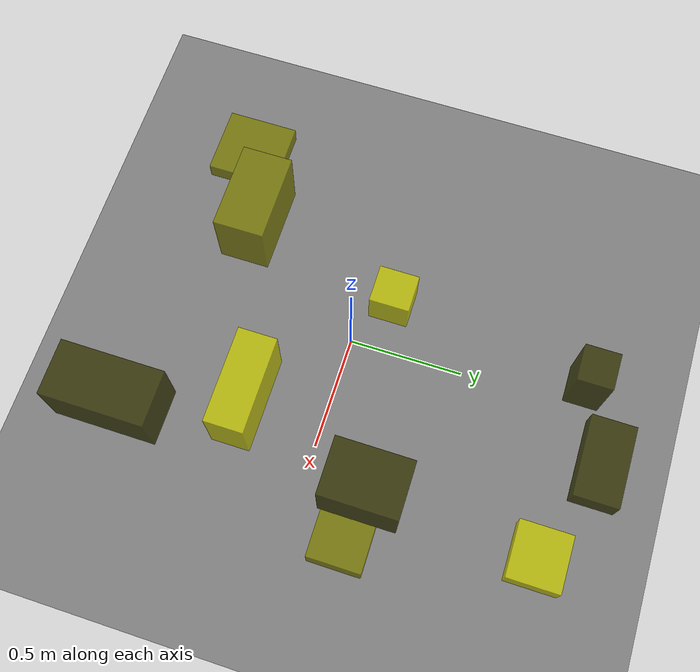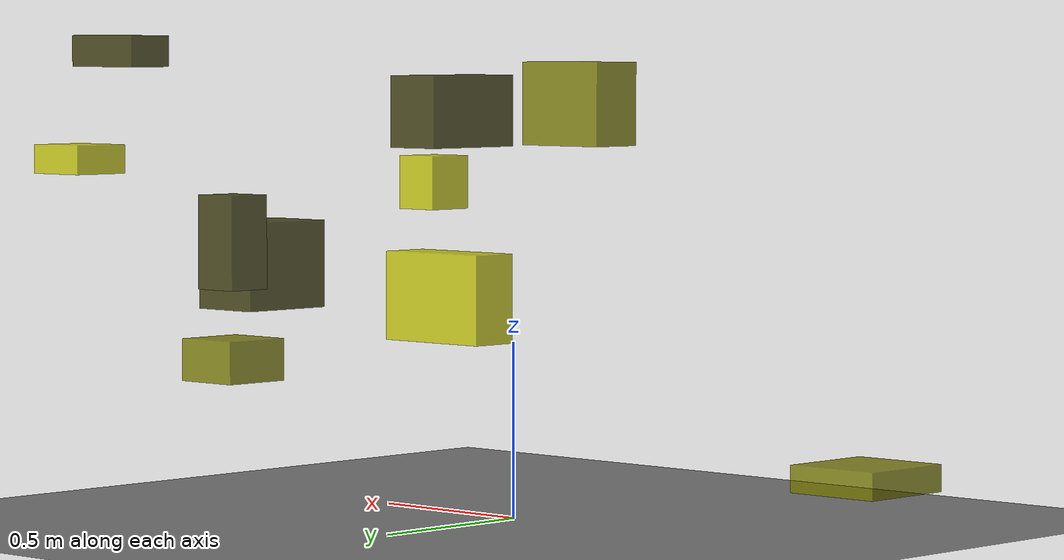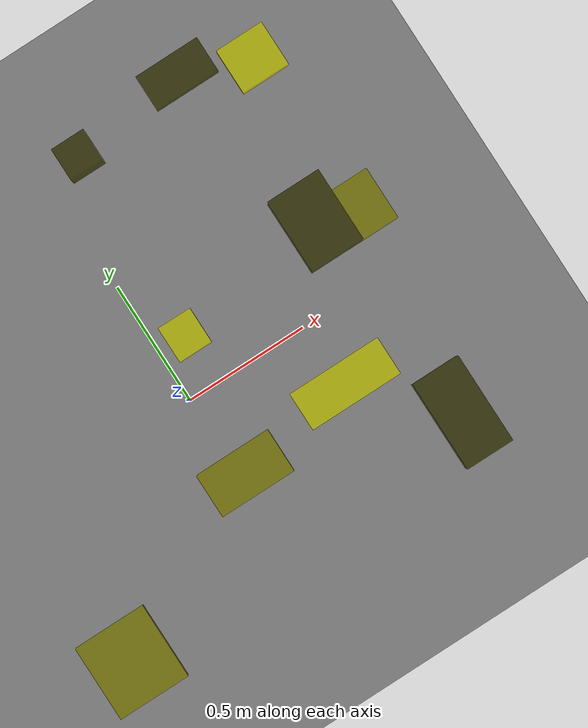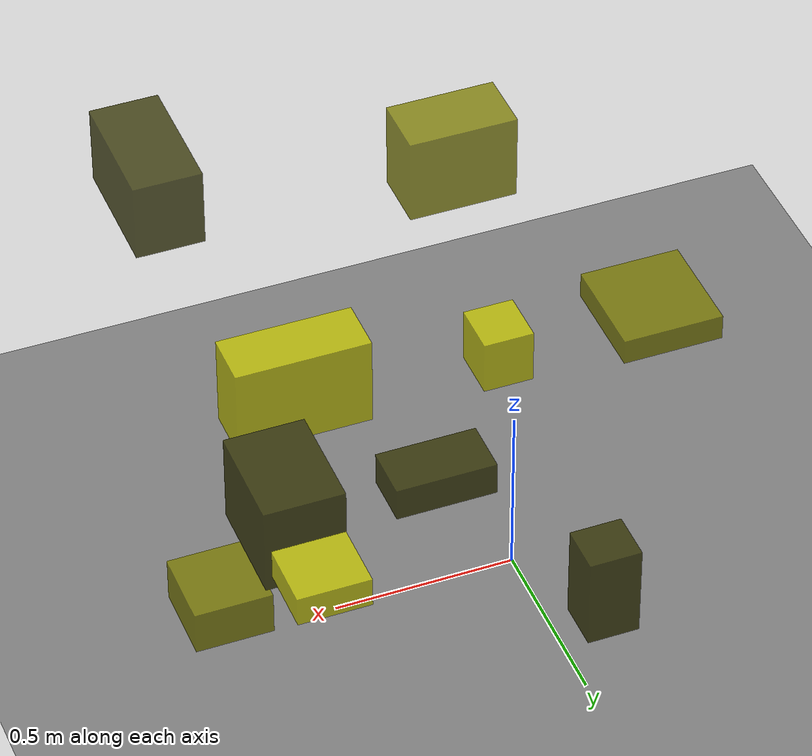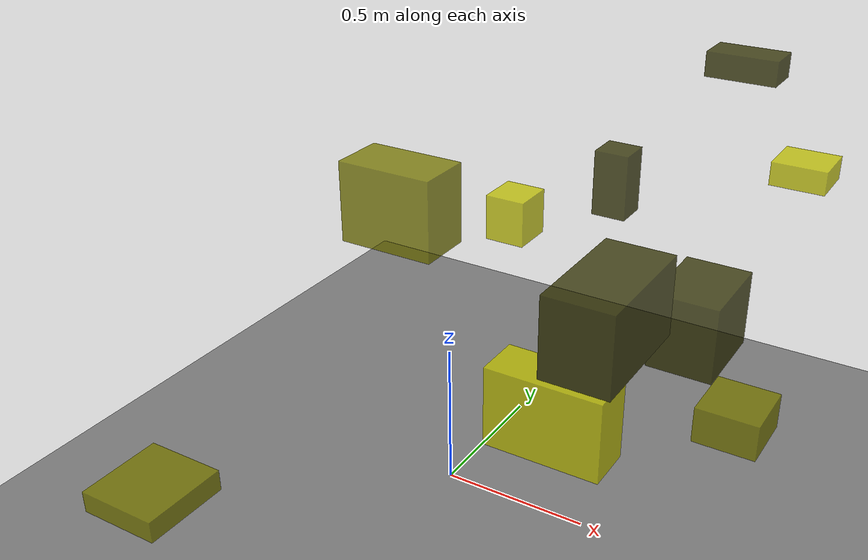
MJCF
<?xml version="1.0"?>
<mujoco model="obstacle_scene">
  <compiler angle="radian" coordinate="local"/>
  <option timestep="0.001" gravity="0 0 -9.81"/>

  <asset>
    <material name="obstacle_mat" rgba="0.8 0.8 0.0 0.8"/>
    <material name="ground_mat" rgba="0.5 0.5 0.5 1"/>
  </asset>

  <worldbody>
    <!-- Ground plane -->
    <geom name="ground" type="plane" size="3 3 0.1" material="ground_mat"/>

    <!-- Obstacles -->
    <body name="obstacle_0" pos="0.785838 -0.552688 1.127837">
      <geom name="obs_0" type="box" size="0.091722 0.171687 0.108706" rgba="0.2 0.2 0.0 0.8"/>
    </body>
    <body name="obstacle_1" pos="0.896762 0.248923 0.413791">
      <geom name="obs_1" type="box" size="0.103155 0.105932 0.061853" rgba="0.5 0.5 0.0 0.8"/>
    </body>
    <body name="obstacle_2" pos="0.508543 -0.256924 0.590365">
      <geom name="obs_2" type="box" size="0.185611 0.075709 0.131106" rgba="0.8 0.8 0.0 0.8"/>
    </body>
    <body name="obstacle_3" pos="0.154665 0.927341 0.812925">
      <geom name="obs_3" type="box" size="0.066206 0.062969 0.125813" rgba="0.2 0.2 0.0 0.8"/>
    </body>
    <body name="obstacle_4" pos="0.049061 -0.322240 1.164532">
      <geom name="obs_4" type="box" size="0.144528 0.083112 0.119488" rgba="0.5 0.5 0.0 0.8"/>
    </body>
    <body name="obstacle_5" pos="0.128711 0.191098 0.952645">
      <geom name="obs_5" type="box" size="0.065364 0.069408 0.074058" rgba="0.8 0.8 0.0 0.8"/>
    </body>
    <body name="obstacle_6" pos="0.592002 0.939248 1.319352">
      <geom name="obs_6" type="box" size="0.122750 0.066802 0.042634" rgba="0.2 0.2 0.0 0.8"/>
    </body>
    <body name="obstacle_7" pos="-0.706567 -0.698325 0.113073">
      <geom name="obs_7" type="box" size="0.147974 0.155648 0.039249" rgba="0.5 0.5 0.0 0.8"/>
    </body>
    <body name="obstacle_8" pos="0.848897 0.869894 1.016594">
      <geom name="obs_8" type="box" size="0.092765 0.086276 0.040242" rgba="0.8 0.8 0.0 0.8"/>
    </body>
    <body name="obstacle_9" pos="0.731679 0.284853 0.701589">
      <geom name="obs_9" type="box" size="0.106687 0.145775 0.125654" rgba="0.2 0.2 0.0 0.8"/>
    </body>
  </worldbody>
</mujoco>
